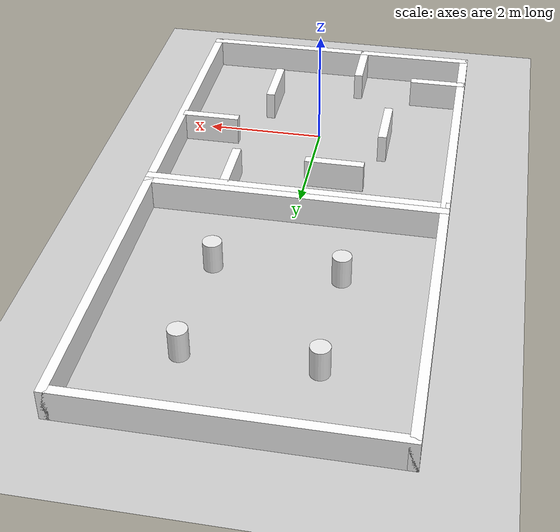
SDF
<?xml version="1.0"?>
<sdf version="1.6">
  <world name="default">

    <include>
      <uri>model://ground_plane</uri>
    </include>

    <include>
      <uri>model://sun</uri>
    </include>

    <scene>
      <shadows>false</shadows>
    </scene>

    <gui fullscreen='0'>
      <camera name='user_camera'>
        <pose frame=''>0.319654 -0.235002 9.29441 0 1.5138 0.009599</pose>
        <view_controller>orbit</view_controller>
        <projection_type>perspective</projection_type>
      </camera>
    </gui>

    <physics type="ode">
      <real_time_update_rate>1000.0</real_time_update_rate>
      <max_step_size>0.001</max_step_size>
      <real_time_factor>1</real_time_factor>
      <ode>
        <solver>
          <type>quick</type>
          <iters>150</iters>
          <precon_iters>0</precon_iters>
          <sor>1.400000</sor>
          <use_dynamic_moi_rescaling>1</use_dynamic_moi_rescaling>
        </solver>
        <constraints>
          <cfm>0.00001</cfm>
          <erp>0.2</erp>
          <contact_max_correcting_vel>2000.000000</contact_max_correcting_vel>
          <contact_surface_layer>0.01000</contact_surface_layer>
        </constraints>
      </ode>
    </physics>

    <model name="turtlebot3_dqn_world">
      <static>1</static>
      <include>
        <uri>model://turtlebot3_dqn_world</uri>
      </include>
    </model>

    <include>
      <pose>0 0 0 0 0 0</pose>
      <uri>model://turtlebot3_dqn_world/inner_walls</uri>
    </include>

    <model name="turtlebot3_dqn_obstacle1">
      <plugin name="obstacle1" filename="libobstacle1.so"/>
      <include>
        <pose>2 2 0 0 0 0</pose>
        <uri>model://turtlebot3_dqn_world/obstacle1</uri>
      </include>
    </model>

    <model name="turtlebot3_dqn_obstacle2">
      <plugin name="obstacle2" filename="libobstacle2.so"/>
      <include>
        <pose>-2 -2 0 0 0 0</pose>
        <uri>model://turtlebot3_dqn_world/obstacle2</uri>
      </include>
    </model>

    <model name="turtlebot3_dqn_world2">
      <static>1</static>
      <include>
        <pose>0 5 0 0 0 0</pose>
        <uri>model://turtlebot3_dqn_world</uri>
      </include>
    </model>

    <include>
      <pose>0 5 0 0 0 0</pose>
      <uri>model://turtlebot3_dqn_world/obstacles</uri>
    </include>

  </world>
</sdf>

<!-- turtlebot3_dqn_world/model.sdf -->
<sdf version='1.8'>
  <model name='turtlebot3_square'>
    <pose>0 0 0 0 0 0</pose>
    <static>true</static>

    <link name='Wall_1'>
      <pose>2.425 0 0.25 0 0 1.5708</pose>
      <collision name='Wall_1_Collision'>
        <geometry>
          <box>
            <size>5 0.15 0.5</size>
          </box>
        </geometry>
      </collision>
      <visual name='Wall_1_Visual'>
        <pose>0 0 0 0 0 0</pose>
        <geometry>
          <box>
            <size>5 0.15 0.5</size>
          </box>
        </geometry>
        <material>
          <pbr>
            <metal>
              <albedo_map>textures/wood.png</albedo_map>
            </metal>
          </pbr>
          <ambient>1 1 1 1</ambient>
          <diffuse>1 1 1 1</diffuse>
          <specular>0.2 0.2 0.2 1</specular>
          <emissive>0 0 0 1</emissive>
        </material>
      </visual>
    </link>

    <link name='Wall_2'>
      <pose>0 2.425 0.25 0 0 0</pose>
      <collision name='Wall_2_Collision'>
        <geometry>
          <box>
            <size>5 0.15 0.5</size>
          </box>
        </geometry>
      </collision>
      <visual name='Wall_2_Visual'>
        <pose>0 0 0 0 0 0</pose>
        <geometry>
          <box>
            <size>5 0.15 0.5</size>
          </box>
        </geometry>
        <material>
          <pbr>
            <metal>
              <albedo_map>textures/wood.png</albedo_map>
            </metal>
          </pbr>
          <ambient>1 1 1 1</ambient>
          <diffuse>1 1 1 1</diffuse>
          <specular>0.2 0.2 0.2 1</specular>
          <emissive>0 0 0 1</emissive>
        </material>
      </visual>
    </link>

    <link name='Wall_3'>
      <pose>-2.425 0 0.25 0 0 1.5708</pose>
      <collision name='Wall_3_Collision'>
        <geometry>
          <box>
            <size>5 0.15 0.5</size>
          </box>
        </geometry>
      </collision>
      <visual name='Wall_3_Visual'>
        <pose>0 0 0 0 0 0</pose>
        <geometry>
          <box>
            <size>5 0.15 0.5</size>
          </box>
        </geometry>
        <material>
          <pbr>
            <metal>
              <albedo_map>textures/wood.png</albedo_map>
            </metal>
          </pbr>
          <ambient>1 1 1 1</ambient>
          <diffuse>1 1 1 1</diffuse>
          <specular>0.2 0.2 0.2 1</specular>
          <emissive>0 0 0 1</emissive>
        </material>
      </visual>
    </link>

    <link name='Wall_4'>
      <pose>0 -2.425 0.25 0 0 0</pose>
      <collision name='Wall_4_Collision'>
        <geometry>
          <box>
            <size>5 0.15 0.5</size>
          </box>
        </geometry>
      </collision>
      <visual name='Wall_4_Visual'>
        <pose>0 0 0 0 0 0</pose>
        <geometry>
          <box>
            <size>5 0.15 0.5</size>
          </box>
        </geometry>
        <material>
          <pbr>
            <metal>
              <albedo_map>textures/wood.png</albedo_map>
            </metal>
          </pbr>
          <ambient>1 1 1 1</ambient>
          <diffuse>1 1 1 1</diffuse>
          <specular>0.2 0.2 0.2 1</specular>
          <emissive>0 0 0 1</emissive>
        </material>
      </visual>
    </link>

  </model>
</sdf>

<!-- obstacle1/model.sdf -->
<sdf version='1.8'>
  <model name="obstacle1">
    <pose>2 2 0.25 0 0 0</pose>
    <static>false</static>
    <link name="link">
      <collision name="obstacle1_collision">
        <geometry>
          <cylinder>
            <radius>0.12</radius>
            <length>0.25</length>
          </cylinder>
        </geometry>
      </collision>
      <visual name="obstacle1_visual">
        <geometry>
          <cylinder>
            <radius>0.12</radius>
            <length>0.25</length>
          </cylinder>
        </geometry>
        <material>
          <script>
            <uri>file://media/materials/scripts/gazebo.material</uri>
            <name>Gazebo/White</name>
          </script>
        </material>
      </visual>
    </link>
  </model>
</sdf>

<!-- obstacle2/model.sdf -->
<sdf version='1.8'>
    <model name="obstacle2">
      <pose>-2 -2 0.25 0 0 0</pose>
      <static>false</static>
      <link name="link">
        <collision name="obstacle2_collision">
          <geometry>
            <cylinder>
              <radius>0.12</radius>
              <length>0.25</length>
            </cylinder>
          </geometry>
        </collision>

        <visual name="obstacle2_visual">
          <geometry>
            <cylinder>
              <radius>0.12</radius>
              <length>0.25</length>
            </cylinder>
          </geometry>
          <material>
            <script>
              <uri>file://media/materials/scripts/gazebo.material</uri>
              <name>Gazebo/White</name>
            </script>
          </material>
        </visual>
      </link>
    </model>
</sdf>

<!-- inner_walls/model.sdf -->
<sdf version='1.8'>
  <model name='inner_walls'>
    <pose>0 0 0 0 0 0</pose>
    <static>true</static>
    <link name='inner_wall_1'>
      <pose>-2.0 -1.5 0.25 0 0 0</pose>
      <collision name='inner_wall_1_collision'>
        <geometry>
          <box>
            <size>1 0.15 0.5</size>
          </box>
        </geometry>
      </collision>
      <visual name='inner_wall_visual'>
        <geometry>
          <box>
            <size>1 0.15 0.5</size>
          </box>
        </geometry>
        <material>
          <pbr>
            <metal>
              <albedo_map>textures/wood.png</albedo_map>
            </metal>
          </pbr>
          <ambient>1 1 1 1</ambient>
          <diffuse>1 1 1 1</diffuse>
          <specular>0.2 0.2 0.2 1</specular>
          <emissive>0 0 0 1</emissive>
        </material>
      </visual>
    </link>

    <link name='inner_wall_2'>
      <pose>-0.5 -2.0 0.25 0 0 -1.5708</pose>
      <collision name='inner_wall_2_collision'>
        <geometry>
          <box>
            <size>1 0.15 0.5</size>
          </box>
        </geometry>
      </collision>
      <visual name='inner_wall_2_visual'>
        <geometry>
          <box>
            <size>1 0.15 0.5</size>
          </box>
        </geometry>
        <material>
          <pbr>
            <metal>
              <albedo_map>textures/wood.png</albedo_map>
            </metal>
          </pbr>
          <ambient>1 1 1 1</ambient>
          <diffuse>1 1 1 1</diffuse>
          <specular>0.2 0.2 0.2 1</specular>
          <emissive>0 0 0 1</emissive>
        </material>
      </visual>
    </link>

    <link name='inner_wall_3'>
      <pose>1.0 -1.0 0.25 0 0 1.5708</pose>
      <collision name='inner_wall_3_collision'>
        <geometry>
          <box>
            <size>1 0.15 0.5</size>
          </box>
        </geometry>
      </collision>
      <visual name='inner_wall_3_visual'>
        <geometry>
          <box>
            <size>1 0.15 0.5</size>
          </box>
        </geometry>
        <material>
          <pbr>
            <metal>
              <albedo_map>textures/wood.png</albedo_map>
            </metal>
          </pbr>
          <ambient>1 1 1 1</ambient>
          <diffuse>1 1 1 1</diffuse>
          <specular>0.2 0.2 0.2 1</specular>
          <emissive>0 0 0 1</emissive>
        </material>
      </visual>
    </link>

    <link name='inner_wall_4'>
      <pose>1.2 1.9 0.25 0 0 -1.5708</pose>
      <collision name='inner_wall_4_collision'>
        <geometry>
          <box>
            <size>1 0.15 0.5</size>
          </box>
        </geometry>
      </collision>
      <visual name='inner_wall_4_visual'>
        <geometry>
          <box>
            <size>1 0.15 0.5</size>
          </box>
        </geometry>
        <material>
          <pbr>
            <metal>
              <albedo_map>textures/wood.png</albedo_map>
            </metal>
          </pbr>
          <ambient>1 1 1 1</ambient>
          <diffuse>1 1 1 1</diffuse>
          <specular>0.2 0.2 0.2 1</specular>
          <emissive>0 0 0 1</emissive>
        </material>
      </visual>
    </link>

    <link name='inner_wall_5'>
      <pose>1.9 0.4 0.25 0 0 0</pose>
      <collision name='inner_wall_5_collision'>
        <geometry>
          <box>
            <size>1 0.15 0.5</size>
          </box>
        </geometry>
      </collision>
      <visual name='inner_wall_5_visual'>
        <geometry>
          <box>
            <size>1 0.15 0.5</size>
          </box>
        </geometry>
        <material>
          <pbr>
            <metal>
              <albedo_map>textures/wood.png</albedo_map>
            </metal>
          </pbr>
          <ambient>1 1 1 1</ambient>
          <diffuse>1 1 1 1</diffuse>
          <specular>0.2 0.2 0.2 1</specular>
          <emissive>0 0 0 1</emissive>
        </material>
      </visual>
    </link>

    <link name='inner_wall_6'>
      <pose>-0.5 1.5 0.25 0 0 0</pose>
      <collision name='inner_wall_6_collision'>
        <geometry>
          <box>
            <size>1 0.15 0.5</size>
          </box>
        </geometry>
      </collision>
      <visual name='inner_wall_6_visual'>
        <geometry>
          <box>
            <size>1 0.15 0.5</size>
          </box>
        </geometry>
        <material>
          <pbr>
            <metal>
              <albedo_map>textures/wood.png</albedo_map>
            </metal>
          </pbr>
          <ambient>1 1 1 1</ambient>
          <diffuse>1 1 1 1</diffuse>
          <specular>0.2 0.2 0.2 1</specular>
          <emissive>0 0 0 1</emissive>
        </material>
      </visual>
    </link>

    <link name='inner_wall_7'>
      <pose>-1.2 0.092 0.25 0 0 -1.5708</pose>
      <collision name='inner_wall_7_collision'>
        <geometry>
          <box>
            <size>1 0.15 0.5</size>
          </box>
        </geometry>
      </collision>
      <visual name='inner_wall_7_visual'>
        <geometry>
          <box>
            <size>1 0.15 0.5</size>
          </box>
        </geometry>
        <material>
          <pbr>
            <metal>
              <albedo_map>textures/wood.png</albedo_map>
            </metal>
          </pbr>
          <ambient>1 1 1 1</ambient>
          <diffuse>1 1 1 1</diffuse>
          <specular>0.2 0.2 0.2 1</specular>
          <emissive>0 0 0 1</emissive>
        </material>
      </visual>
    </link>

  </model>
</sdf>

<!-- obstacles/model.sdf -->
<sdf version='1.8'>
  <model name='obstacles'>
    <pose>0 0 0 0 0 0</pose>
    <static>false</static>

    <link name='obstacle_1'>
      <pose>-1.0 -1.0 0.25 0 0 0</pose>
      <collision name='obstacle_1_collision'>
        <geometry>
          <cylinder>
            <radius>0.15</radius>
            <length>0.5</length>
          </cylinder>
        </geometry>
      </collision>
      <visual name='obstacle_1_visual'>
        <geometry>
          <cylinder>
            <radius>0.15</radius>
            <length>0.5</length>
          </cylinder>
        </geometry>
        <material>
          <script>
            <uri>file://media/materials/scripts/gazebo.material</uri>
            <name>Gazebo/White</name>
          </script>
        </material>
      </visual>
    </link>
    <link name='obstacle_2'>
      <pose>-1.0 1.0 0.25 0 0 0</pose>
      <collision name='obstacle_2_collision'>
        <geometry>
          <cylinder>
            <radius>0.15</radius>
            <length>0.5</length>
          </cylinder>
        </geometry>
      </collision>
      <visual name='obstacle_2_visual'>
        <geometry>
          <cylinder>
            <radius>0.15</radius>
            <length>0.5</length>
          </cylinder>
        </geometry>
        <material>
          <script>
            <uri>file://media/materials/scripts/gazebo.material</uri>
            <name>Gazebo/White</name>
          </script>
        </material>
      </visual>
    </link>
    <link name='obstacle_3'>
      <pose>1.0 -1.0 0.25 0 0 0</pose>
      <collision name='obstacle_3_collision'>
        <geometry>
          <cylinder>
            <radius>0.15</radius>
            <length>0.5</length>
          </cylinder>
        </geometry>
      </collision>
      <visual name='obstacle_3_visual'>
        <geometry>
          <cylinder>
            <radius>0.15</radius>
            <length>0.5</length>
          </cylinder>
        </geometry>
        <material>
          <script>
            <uri>file://media/materials/scripts/gazebo.material</uri>
            <name>Gazebo/White</name>
          </script>
        </material>
      </visual>
    </link>
    <link name='obstacle_4'>
      <pose>1.0 1.0 0.25 0 0 0</pose>
      <collision name='obstacle_4_collision'>
        <geometry>
          <cylinder>
            <radius>0.15</radius>
            <length>0.5</length>
          </cylinder>
        </geometry>
      </collision>
      <visual name='obstacle_4_visual'>
        <geometry>
          <cylinder>
            <radius>0.15</radius>
            <length>0.5</length>
          </cylinder>
        </geometry>
        <material>
          <script>
            <uri>file://media/materials/scripts/gazebo.material</uri>
            <name>Gazebo/White</name>
          </script>
        </material>
      </visual>
    </link>
  </model>
</sdf>
